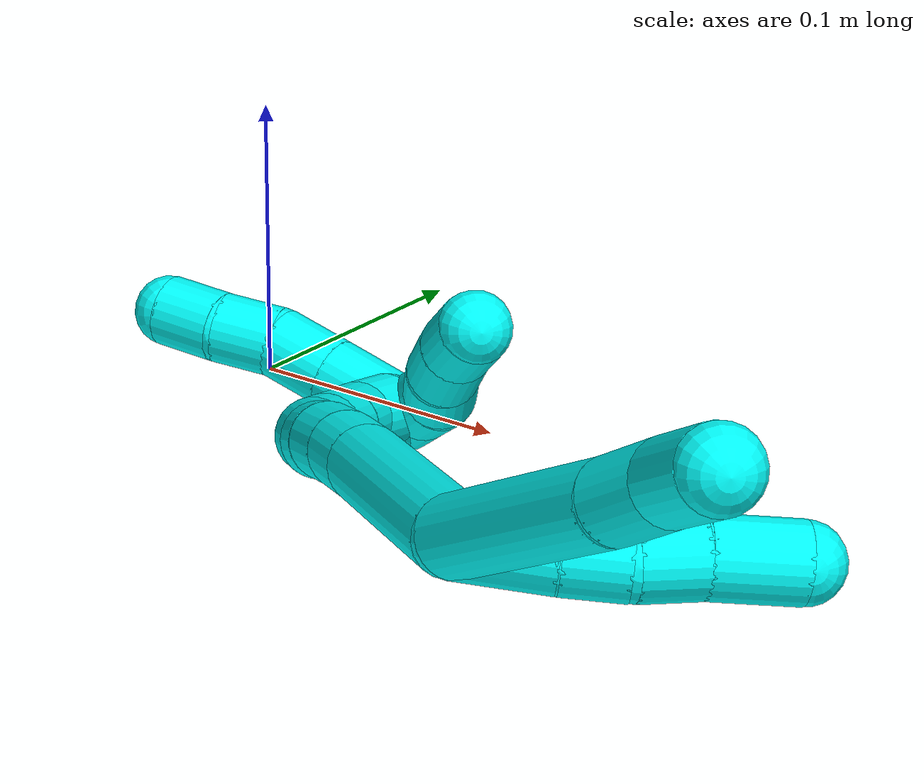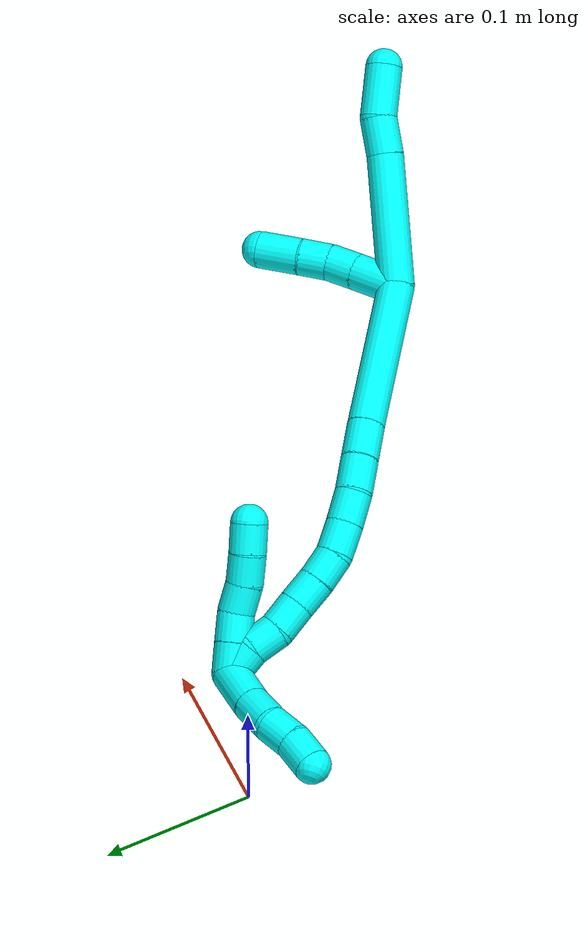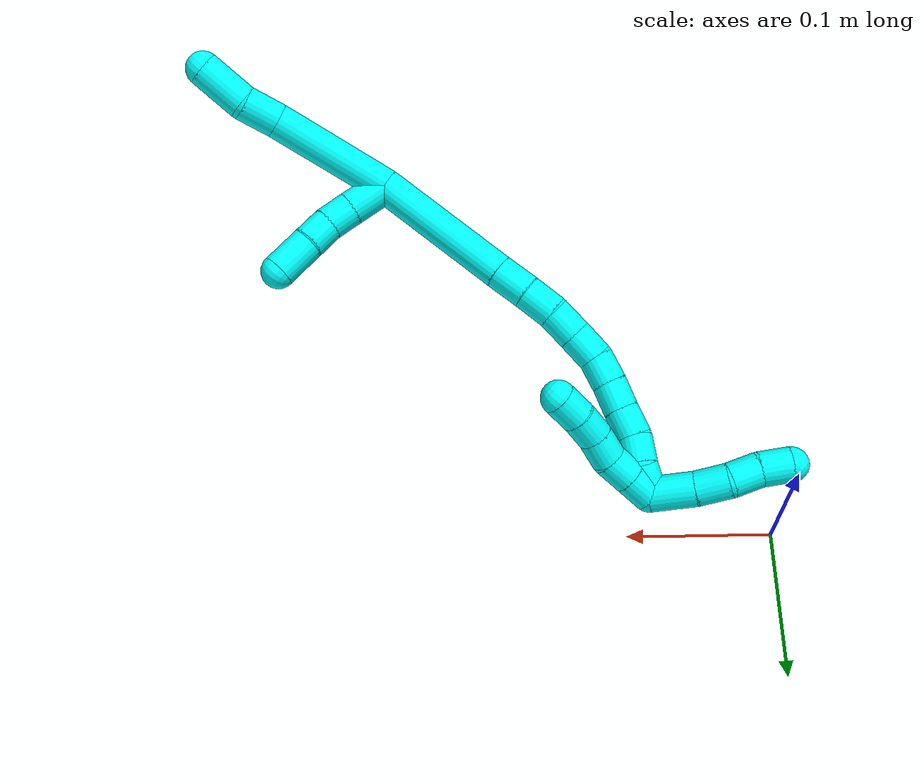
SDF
<sdf version="1.7">
 <world name="default">
  <model name="bin">
   <static>1</static>
   <link name="bottom">
    <collision name="collision-bottom">
     <pose>0 0 -0.01 0 -0 0</pose>
     <geometry><box><size>0.8 0.6 0.02</size></box></geometry>
     <surface>
      <friction><ode><mu>100</mu><mu2>100</mu2></ode></friction>
      <contact><collide_bitmask>65535</collide_bitmask></contact>
     </surface>
    </collision>
   </link>
   <link name="west_wall">
    <collision name="collision-west_wall">
     <pose>-0.41 0 0.1 0 -0 0</pose>
     <geometry><box><size>0.02 0.6 0.2</size></box></geometry>
     <surface>
      <friction><ode><mu>100</mu><mu2>100</mu2></ode></friction>
      <contact><collide_bitmask>65535</collide_bitmask></contact>
     </surface>
    </collision>
   </link>
   <link name="east_wall">
    <collision name="collision-east_wall">
     <pose>0.41 0 0.1 0 -0 0</pose>
     <geometry><box><size>0.02 0.6 0.2</size></box></geometry>
     <surface>
      <friction><ode><mu>100</mu><mu2>100</mu2></ode></friction>
      <contact><collide_bitmask>65535</collide_bitmask></contact>
     </surface>
    </collision>
   </link>
   <link name="south_wall">
    <collision name="collision-south_wall">
     <pose>0 -0.31 0.1 0 -0 0</pose>
     <geometry><box><size>0.8 0.02 0.2</size></box></geometry>
     <surface>
      <friction><ode><mu>100</mu><mu2>100</mu2></ode></friction>
      <contact><collide_bitmask>65535</collide_bitmask></contact>
     </surface>
    </collision>
   </link>
   <link name="north_wall">
    <collision name="collision-north_wall">
     <pose>0 0.31 0.1 0 -0 0</pose>
     <geometry><box><size>0.8 0.02 0.2</size></box></geometry>
     <surface>
      <friction><ode><mu>100</mu><mu2>100</mu2></ode></friction>
      <contact><collide_bitmask>65535</collide_bitmask></contact>
     </surface>
    </collision>
   </link>
  </model>
  <model name="3">
   <static>0</static>
   <link name="3">
    <collision name="collision-cylinder-e_1_2_8">
     <pose>0.010771 0.015082 0.040407 -0.357241 0.244735 -0.0444</pose>
     <geometry><cylinder><radius>0.0125</radius><length>0.088909</length></cylinder></geometry>
     <surface>
      <friction><ode><mu>1.16</mu><mu2>1.16</mu2><slip1>0</slip1><slip2>0</slip2></ode></friction>
      <contact><ode><kp>1e+06</kp><kd>1</kd><max_vel>0</max_vel><min_depth>0.001</min_depth></ode></contact>
     </surface>
    </collision>
    <visual name="visual-cylinder-e_1_2_8">
     <pose>0.010771 0.015082 0.040407 -0.357241 0.244735 -0.0444</pose>
     <geometry><cylinder><radius>0.0125</radius><length>0.088909</length></cylinder></geometry>
     <material><ambient>0.003922 1 0.996078 1</ambient></material>
    </visual>
    <collision name="collision-cylinder-e_2_8_9">
     <pose>0.025488 0.035685 0.091951 -0.460218 0.307351 -0.07254</pose>
     <geometry><cylinder><radius>0.0125</radius><length>0.026083</length></cylinder></geometry>
     <surface>
      <friction><ode><mu>1.16</mu><mu2>1.16</mu2><slip1>0</slip1><slip2>0</slip2></ode></friction>
      <contact><ode><kp>1e+06</kp><kd>1</kd><max_vel>0</max_vel><min_depth>0.001</min_depth></ode></contact>
     </surface>
    </collision>
    <visual name="visual-cylinder-e_2_8_9">
     <pose>0.025488 0.035685 0.091951 -0.460218 0.307351 -0.07254</pose>
     <geometry><cylinder><radius>0.0125</radius><length>0.026083</length></cylinder></geometry>
     <material><ambient>0.003922 1 0.996078 1</ambient></material>
    </visual>
    <collision name="collision-cylinder-e_3_9_6">
     <pose>0.030622 0.046255 0.119806 -0.293325 0.067929 -0.010038</pose>
     <geometry><cylinder><radius>0.0125</radius><length>0.035007</length></cylinder></geometry>
     <surface>
      <friction><ode><mu>1.16</mu><mu2>1.16</mu2><slip1>0</slip1><slip2>0</slip2></ode></friction>
      <contact><ode><kp>1e+06</kp><kd>1</kd><max_vel>0</max_vel><min_depth>0.001</min_depth></ode></contact>
     </surface>
    </collision>
    <visual name="visual-cylinder-e_3_9_6">
     <pose>0.030622 0.046255 0.119806 -0.293325 0.067929 -0.010038</pose>
     <geometry><cylinder><radius>0.0125</radius><length>0.035007</length></cylinder></geometry>
     <material><ambient>0.003922 1 0.996078 1</ambient></material>
    </visual>
    <collision name="collision-cylinder-e_1_2_10">
     <pose>0.014762 0.001178 0.003095 -0.363776 1.35008 -0.292354</pose>
     <geometry><cylinder><radius>0.0125</radius><length>0.030257</length></cylinder></geometry>
     <surface>
      <friction><ode><mu>1.16</mu><mu2>1.16</mu2><slip1>0</slip1><slip2>0</slip2></ode></friction>
      <contact><ode><kp>1e+06</kp><kd>1</kd><max_vel>0</max_vel><min_depth>0.001</min_depth></ode></contact>
     </surface>
    </collision>
    <visual name="visual-cylinder-e_1_2_10">
     <pose>0.014762 0.001178 0.003095 -0.363776 1.35008 -0.292354</pose>
     <geometry><cylinder><radius>0.0125</radius><length>0.030257</length></cylinder></geometry>
     <material><ambient>0.003922 1 0.996078 1</ambient></material>
    </visual>
    <collision name="collision-cylinder-e_2_10_11">
     <pose>0.039361 0.003576 0.007922 -0.613458 1.35881 -0.500883</pose>
     <geometry><cylinder><radius>0.0125</radius><length>0.020125</length></cylinder></geometry>
     <surface>
      <friction><ode><mu>1.16</mu><mu2>1.16</mu2><slip1>0</slip1><slip2>0</slip2></ode></friction>
      <contact><ode><kp>1e+06</kp><kd>1</kd><max_vel>0</max_vel><min_depth>0.001</min_depth></ode></contact>
     </surface>
    </collision>
    <visual name="visual-cylinder-e_2_10_11">
     <pose>0.039361 0.003576 0.007922 -0.613458 1.35881 -0.500883</pose>
     <geometry><cylinder><radius>0.0125</radius><length>0.020125</length></cylinder></geometry>
     <material><ambient>0.003922 1 0.996078 1</ambient></material>
    </visual>
    <collision name="collision-cylinder-e_3_11_12">
     <pose>0.059214 0.007132 0.009402 -1.67767 1.34027 -1.4456</pose>
     <geometry><cylinder><radius>0.0125</radius><length>0.020576</length></cylinder></geometry>
     <surface>
      <friction><ode><mu>1.16</mu><mu2>1.16</mu2><slip1>0</slip1><slip2>0</slip2></ode></friction>
      <contact><ode><kp>1e+06</kp><kd>1</kd><max_vel>0</max_vel><min_depth>0.001</min_depth></ode></contact>
     </surface>
    </collision>
    <visual name="visual-cylinder-e_3_11_12">
     <pose>0.059214 0.007132 0.009402 -1.67767 1.34027 -1.4456</pose>
     <geometry><cylinder><radius>0.0125</radius><length>0.020576</length></cylinder></geometry>
     <material><ambient>0.003922 1 0.996078 1</ambient></material>
    </visual>
    <collision name="collision-cylinder-e_4_12_5">
     <pose>0.083621 0.011403 0.009203 -1.5442 1.43717 -1.41086</pose>
     <geometry><cylinder><radius>0.0125</radius><length>0.029041</length></cylinder></geometry>
     <surface>
      <friction><ode><mu>1.16</mu><mu2>1.16</mu2><slip1>0</slip1><slip2>0</slip2></ode></friction>
      <contact><ode><kp>1e+06</kp><kd>1</kd><max_vel>0</max_vel><min_depth>0.001</min_depth></ode></contact>
     </surface>
    </collision>
    <visual name="visual-cylinder-e_4_12_5">
     <pose>0.083621 0.011403 0.009203 -1.5442 1.43717 -1.41086</pose>
     <geometry><cylinder><radius>0.0125</radius><length>0.029041</length></cylinder></geometry>
     <material><ambient>0.003922 1 0.996078 1</ambient></material>
    </visual>
    <collision name="collision-cylinder-e_1_2_13">
     <pose>-0.004062 -5e-06 -0.051576 3.14149 -0.078595 -3.13897</pose>
     <geometry><cylinder><radius>0.0125</radius><length>0.103471</length></cylinder></geometry>
     <surface>
      <friction><ode><mu>1.16</mu><mu2>1.16</mu2><slip1>0</slip1><slip2>0</slip2></ode></friction>
      <contact><ode><kp>1e+06</kp><kd>1</kd><max_vel>0</max_vel><min_depth>0.001</min_depth></ode></contact>
     </surface>
    </collision>
    <visual name="visual-cylinder-e_1_2_13">
     <pose>-0.004062 -5e-06 -0.051576 3.14149 -0.078595 -3.13897</pose>
     <geometry><cylinder><radius>0.0125</radius><length>0.103471</length></cylinder></geometry>
     <material><ambient>0.003922 1 0.996078 1</ambient></material>
    </visual>
    <collision name="collision-cylinder-e_2_13_14">
     <pose>-0.009348 -0.000226 -0.115436 3.1241 -0.099293 -2.79314</pose>
     <geometry><cylinder><radius>0.0125</radius><length>0.024695</length></cylinder></geometry>
     <surface>
      <friction><ode><mu>1.16</mu><mu2>1.16</mu2><slip1>0</slip1><slip2>0</slip2></ode></friction>
      <contact><ode><kp>1e+06</kp><kd>1</kd><max_vel>0</max_vel><min_depth>0.001</min_depth></ode></contact>
     </surface>
    </collision>
    <visual name="visual-cylinder-e_2_13_14">
     <pose>-0.009348 -0.000226 -0.115436 3.1241 -0.099293 -2.79314</pose>
     <geometry><cylinder><radius>0.0125</radius><length>0.024695</length></cylinder></geometry>
     <material><ambient>0.003922 1 0.996078 1</ambient></material>
    </visual>
    <collision name="collision-cylinder-e_3_14_15">
     <pose>-0.011557 -0.0013 -0.139482 3.06866 -0.083345 -1.70403</pose>
     <geometry><cylinder><radius>0.0125</radius><length>0.023667</length></cylinder></geometry>
     <surface>
      <friction><ode><mu>1.16</mu><mu2>1.16</mu2><slip1>0</slip1><slip2>0</slip2></ode></friction>
      <contact><ode><kp>1e+06</kp><kd>1</kd><max_vel>0</max_vel><min_depth>0.001</min_depth></ode></contact>
     </surface>
    </collision>
    <visual name="visual-cylinder-e_3_14_15">
     <pose>-0.011557 -0.0013 -0.139482 3.06866 -0.083345 -1.70403</pose>
     <geometry><cylinder><radius>0.0125</radius><length>0.023667</length></cylinder></geometry>
     <material><ambient>0.003922 1 0.996078 1</ambient></material>
    </visual>
    <collision name="collision-cylinder-e_4_15_16">
     <pose>-0.011908 -0.003823 -0.16209 2.98935 0.05776 0.724125</pose>
     <geometry><cylinder><radius>0.0125</radius><length>0.021983</length></cylinder></geometry>
     <surface>
      <friction><ode><mu>1.16</mu><mu2>1.16</mu2><slip1>0</slip1><slip2>0</slip2></ode></friction>
      <contact><ode><kp>1e+06</kp><kd>1</kd><max_vel>0</max_vel><min_depth>0.001</min_depth></ode></contact>
     </surface>
    </collision>
    <visual name="visual-cylinder-e_4_15_16">
     <pose>-0.011908 -0.003823 -0.16209 2.98935 0.05776 0.724125</pose>
     <geometry><cylinder><radius>0.0125</radius><length>0.021983</length></cylinder></geometry>
     <material><ambient>0.003922 1 0.996078 1</ambient></material>
    </visual>
    <collision name="collision-cylinder-e_5_16_17">
     <pose>-0.010348 -0.006586 -0.183855 3.04127 0.084097 1.39501</pose>
     <geometry><cylinder><radius>0.0125</radius><length>0.022026</length></cylinder></geometry>
     <surface>
      <friction><ode><mu>1.16</mu><mu2>1.16</mu2><slip1>0</slip1><slip2>0</slip2></ode></friction>
      <contact><ode><kp>1e+06</kp><kd>1</kd><max_vel>0</max_vel><min_depth>0.001</min_depth></ode></contact>
     </surface>
    </collision>
    <visual name="visual-cylinder-e_5_16_17">
     <pose>-0.010348 -0.006586 -0.183855 3.04127 0.084097 1.39501</pose>
     <geometry><cylinder><radius>0.0125</radius><length>0.022026</length></cylinder></geometry>
     <material><ambient>0.003922 1 0.996078 1</ambient></material>
    </visual>
    <collision name="collision-cylinder-e_6_17_18">
     <pose>-0.005862 -0.007975 -0.204479 3.11178 0.351529 2.97408</pose>
     <geometry><cylinder><radius>0.0125</radius><length>0.020684</length></cylinder></geometry>
     <surface>
      <friction><ode><mu>1.16</mu><mu2>1.16</mu2><slip1>0</slip1><slip2>0</slip2></ode></friction>
      <contact><ode><kp>1e+06</kp><kd>1</kd><max_vel>0</max_vel><min_depth>0.001</min_depth></ode></contact>
     </surface>
    </collision>
    <visual name="visual-cylinder-e_6_17_18">
     <pose>-0.005862 -0.007975 -0.204479 3.11178 0.351529 2.97408</pose>
     <geometry><cylinder><radius>0.0125</radius><length>0.020684</length></cylinder></geometry>
     <material><ambient>0.003922 1 0.996078 1</ambient></material>
    </visual>
    <collision name="collision-cylinder-e_7_18_19">
     <pose>0.002028 -0.008124 -0.22356 -3.12662 0.43252 -3.07346</pose>
     <geometry><cylinder><radius>0.0125</radius><length>0.020656</length></cylinder></geometry>
     <surface>
      <friction><ode><mu>1.16</mu><mu2>1.16</mu2><slip1>0</slip1><slip2>0</slip2></ode></friction>
      <contact><ode><kp>1e+06</kp><kd>1</kd><max_vel>0</max_vel><min_depth>0.001</min_depth></ode></contact>
     </surface>
    </collision>
    <visual name="visual-cylinder-e_7_18_19">
     <pose>0.002028 -0.008124 -0.22356 -3.12662 0.43252 -3.07346</pose>
     <geometry><cylinder><radius>0.0125</radius><length>0.020656</length></cylinder></geometry>
     <material><ambient>0.003922 1 0.996078 1</ambient></material>
    </visual>
    <collision name="collision-cylinder-e_8_19_20">
     <pose>0.01042 -0.007651 -0.242744 -3.10767 0.3925 -2.97134</pose>
     <geometry><cylinder><radius>0.0125</radius><length>0.021242</length></cylinder></geometry>
     <surface>
      <friction><ode><mu>1.16</mu><mu2>1.16</mu2><slip1>0</slip1><slip2>0</slip2></ode></friction>
      <contact><ode><kp>1e+06</kp><kd>1</kd><max_vel>0</max_vel><min_depth>0.001</min_depth></ode></contact>
     </surface>
    </collision>
    <visual name="visual-cylinder-e_8_19_20">
     <pose>0.01042 -0.007651 -0.242744 -3.10767 0.3925 -2.97134</pose>
     <geometry><cylinder><radius>0.0125</radius><length>0.021242</length></cylinder></geometry>
     <material><ambient>0.003922 1 0.996078 1</ambient></material>
    </visual>
    <collision name="collision-cylinder-e_9_20_21">
     <pose>0.020624 -0.005965 -0.260493 -2.97285 0.65139 -2.65084</pose>
     <geometry><cylinder><radius>0.0125</radius><length>0.02026</length></cylinder></geometry>
     <surface>
      <friction><ode><mu>1.16</mu><mu2>1.16</mu2><slip1>0</slip1><slip2>0</slip2></ode></friction>
      <contact><ode><kp>1e+06</kp><kd>1</kd><max_vel>0</max_vel><min_depth>0.001</min_depth></ode></contact>
     </surface>
    </collision>
    <visual name="visual-cylinder-e_9_20_21">
     <pose>0.020624 -0.005965 -0.260493 -2.97285 0.65139 -2.65084</pose>
     <geometry><cylinder><radius>0.0125</radius><length>0.02026</length></cylinder></geometry>
     <material><ambient>0.003922 1 0.996078 1</ambient></material>
    </visual>
    <collision name="collision-cylinder-e_10_21_1">
     <pose>0.032007 -0.006122 -0.277591 2.97815 0.514121 2.53752</pose>
     <geometry><cylinder><radius>0.0125</radius><length>0.021316</length></cylinder></geometry>
     <surface>
      <friction><ode><mu>1.16</mu><mu2>1.16</mu2><slip1>0</slip1><slip2>0</slip2></ode></friction>
      <contact><ode><kp>1e+06</kp><kd>1</kd><max_vel>0</max_vel><min_depth>0.001</min_depth></ode></contact>
     </surface>
    </collision>
    <visual name="visual-cylinder-e_10_21_1">
     <pose>0.032007 -0.006122 -0.277591 2.97815 0.514121 2.53752</pose>
     <geometry><cylinder><radius>0.0125</radius><length>0.021316</length></cylinder></geometry>
     <material><ambient>0.003922 1 0.996078 1</ambient></material>
    </visual>
    <collision name="collision-cylinder-e_1_1_22">
     <pose>0.037822 -0.004002 -0.277447 -0.372082 0.057353 -0.010798</pose>
     <geometry><cylinder><radius>0.0125</radius><length>0.02</length></cylinder></geometry>
     <surface>
      <friction><ode><mu>1.16</mu><mu2>1.16</mu2><slip1>0</slip1><slip2>0</slip2></ode></friction>
      <contact><ode><kp>1e+06</kp><kd>1</kd><max_vel>0</max_vel><min_depth>0.001</min_depth></ode></contact>
     </surface>
    </collision>
    <visual name="visual-cylinder-e_1_1_22">
     <pose>0.037822 -0.004002 -0.277447 -0.372082 0.057353 -0.010798</pose>
     <geometry><cylinder><radius>0.0125</radius><length>0.02</length></cylinder></geometry>
     <material><ambient>0.003922 1 0.996078 1</ambient></material>
    </visual>
    <collision name="collision-cylinder-e_2_22_23">
     <pose>0.038961 0.003111 -0.25879 -0.356415 0.056615 -0.0102</pose>
     <geometry><cylinder><radius>0.0125</radius><length>0.02</length></cylinder></geometry>
     <surface>
      <friction><ode><mu>1.16</mu><mu2>1.16</mu2><slip1>0</slip1><slip2>0</slip2></ode></friction>
      <contact><ode><kp>1e+06</kp><kd>1</kd><max_vel>0</max_vel><min_depth>0.001</min_depth></ode></contact>
     </surface>
    </collision>
    <visual name="visual-cylinder-e_2_22_23">
     <pose>0.038961 0.003111 -0.25879 -0.356415 0.056615 -0.0102</pose>
     <geometry><cylinder><radius>0.0125</radius><length>0.02</length></cylinder></geometry>
     <material><ambient>0.003922 1 0.996078 1</ambient></material>
    </visual>
    <collision name="collision-cylinder-e_3_23_24">
     <pose>0.037477 0.011258 -0.240828 -0.496684 -0.206429 0.05252</pose>
     <geometry><cylinder><radius>0.0125</radius><length>0.02</length></cylinder></geometry>
     <surface>
      <friction><ode><mu>1.16</mu><mu2>1.16</mu2><slip1>0</slip1><slip2>0</slip2></ode></friction>
      <contact><ode><kp>1e+06</kp><kd>1</kd><max_vel>0</max_vel><min_depth>0.001</min_depth></ode></contact>
     </surface>
    </collision>
    <visual name="visual-cylinder-e_3_23_24">
     <pose>0.037477 0.011258 -0.240828 -0.496684 -0.206429 0.05252</pose>
     <geometry><cylinder><radius>0.0125</radius><length>0.02</length></cylinder></geometry>
     <material><ambient>0.003922 1 0.996078 1</ambient></material>
    </visual>
    <collision name="collision-cylinder-e_4_24_25">
     <pose>0.034959 0.021456 -0.223907 -0.587092 -0.046842 0.014162</pose>
     <geometry><cylinder><radius>0.0125</radius><length>0.02</length></cylinder></geometry>
     <surface>
      <friction><ode><mu>1.16</mu><mu2>1.16</mu2><slip1>0</slip1><slip2>0</slip2></ode></friction>
      <contact><ode><kp>1e+06</kp><kd>1</kd><max_vel>0</max_vel><min_depth>0.001</min_depth></ode></contact>
     </surface>
    </collision>
    <visual name="visual-cylinder-e_4_24_25">
     <pose>0.034959 0.021456 -0.223907 -0.587092 -0.046842 0.014162</pose>
     <geometry><cylinder><radius>0.0125</radius><length>0.02</length></cylinder></geometry>
     <material><ambient>0.003922 1 0.996078 1</ambient></material>
    </visual>
    <collision name="collision-cylinder-e_5_25_4">
     <pose>0.034864 0.031828 -0.206847 -0.505556 0.037306 -0.009637</pose>
     <geometry><cylinder><radius>0.0125</radius><length>0.02</length></cylinder></geometry>
     <surface>
      <friction><ode><mu>1.16</mu><mu2>1.16</mu2><slip1>0</slip1><slip2>0</slip2></ode></friction>
      <contact><ode><kp>1e+06</kp><kd>1</kd><max_vel>0</max_vel><min_depth>0.001</min_depth></ode></contact>
     </surface>
    </collision>
    <visual name="visual-cylinder-e_5_25_4">
     <pose>0.034864 0.031828 -0.206847 -0.505556 0.037306 -0.009637</pose>
     <geometry><cylinder><radius>0.0125</radius><length>0.02</length></cylinder></geometry>
     <material><ambient>0.003922 1 0.996078 1</ambient></material>
    </visual>
    <collision name="collision-cylinder-e_1_1_26">
     <pose>0.025309 -0.004382 -0.297243 -2.84128 -0.826865 2.47743</pose>
     <geometry><cylinder><radius>0.0125</radius><length>0.032452</length></cylinder></geometry>
     <surface>
      <friction><ode><mu>1.16</mu><mu2>1.16</mu2><slip1>0</slip1><slip2>0</slip2></ode></friction>
      <contact><ode><kp>1e+06</kp><kd>1</kd><max_vel>0</max_vel><min_depth>0.001</min_depth></ode></contact>
     </surface>
    </collision>
    <visual name="visual-cylinder-e_1_1_26">
     <pose>0.025309 -0.004382 -0.297243 -2.84128 -0.826865 2.47743</pose>
     <geometry><cylinder><radius>0.0125</radius><length>0.032452</length></cylinder></geometry>
     <material><ambient>0.003922 1 0.996078 1</ambient></material>
    </visual>
    <collision name="collision-cylinder-e_2_26_27">
     <pose>0.003742 0.001539 -0.314379 -2.75926 -0.931594 2.4066</pose>
     <geometry><cylinder><radius>0.0125</radius><length>0.023992</length></cylinder></geometry>
     <surface>
      <friction><ode><mu>1.16</mu><mu2>1.16</mu2><slip1>0</slip1><slip2>0</slip2></ode></friction>
      <contact><ode><kp>1e+06</kp><kd>1</kd><max_vel>0</max_vel><min_depth>0.001</min_depth></ode></contact>
     </surface>
    </collision>
    <visual name="visual-cylinder-e_2_26_27">
     <pose>0.003742 0.001539 -0.314379 -2.75926 -0.931594 2.4066</pose>
     <geometry><cylinder><radius>0.0125</radius><length>0.023992</length></cylinder></geometry>
     <material><ambient>0.003922 1 0.996078 1</ambient></material>
    </visual>
    <collision name="collision-cylinder-e_3_27_28">
     <pose>-0.015425 0.004163 -0.325905 3.13226 -1.09738 -3.12633</pose>
     <geometry><cylinder><radius>0.0125</radius><length>0.021439</length></cylinder></geometry>
     <surface>
      <friction><ode><mu>1.16</mu><mu2>1.16</mu2><slip1>0</slip1><slip2>0</slip2></ode></friction>
      <contact><ode><kp>1e+06</kp><kd>1</kd><max_vel>0</max_vel><min_depth>0.001</min_depth></ode></contact>
     </surface>
    </collision>
    <visual name="visual-cylinder-e_3_27_28">
     <pose>-0.015425 0.004163 -0.325905 3.13226 -1.09738 -3.12633</pose>
     <geometry><cylinder><radius>0.0125</radius><length>0.021439</length></cylinder></geometry>
     <material><ambient>0.003922 1 0.996078 1</ambient></material>
    </visual>
    <collision name="collision-cylinder-e_4_28_3">
     <pose>-0.033634 0.004413 -0.337653 -3.09848 -0.900831 3.05249</pose>
     <geometry><cylinder><radius>0.0125</radius><length>0.022118</length></cylinder></geometry>
     <surface>
      <friction><ode><mu>1.16</mu><mu2>1.16</mu2><slip1>0</slip1><slip2>0</slip2></ode></friction>
      <contact><ode><kp>1e+06</kp><kd>1</kd><max_vel>0</max_vel><min_depth>0.001</min_depth></ode></contact>
     </surface>
    </collision>
    <visual name="visual-cylinder-e_4_28_3">
     <pose>-0.033634 0.004413 -0.337653 -3.09848 -0.900831 3.05249</pose>
     <geometry><cylinder><radius>0.0125</radius><length>0.022118</length></cylinder></geometry>
     <material><ambient>0.003922 1 0.996078 1</ambient></material>
    </visual>
    <collision name="collision-sphere-3">
     <pose>-0.042303 0.004709 -0.344514 0 -0 0</pose>
     <geometry><sphere><radius>0.0125</radius></sphere></geometry>
     <surface>
      <friction><ode><mu>1.16</mu><mu2>1.16</mu2><slip1>0</slip1><slip2>0</slip2></ode></friction>
      <contact><ode><kp>1e+06</kp><kd>1</kd><max_vel>0</max_vel><min_depth>0.001</min_depth></ode></contact>
     </surface>
    </collision>
    <visual name="visual-sphere-3">
     <pose>-0.042303 0.004709 -0.344514 0 -0 0</pose>
     <geometry><sphere><radius>0.0125</radius></sphere></geometry>
     <material><ambient>0.003922 1 0.996078 1</ambient></material>
    </visual>
    <collision name="collision-sphere-28">
     <pose>-0.024966 0.004117 -0.330792 0 -0 0</pose>
     <geometry><sphere><radius>0.0125</radius></sphere></geometry>
     <surface>
      <friction><ode><mu>1.16</mu><mu2>1.16</mu2><slip1>0</slip1><slip2>0</slip2></ode></friction>
      <contact><ode><kp>1e+06</kp><kd>1</kd><max_vel>0</max_vel><min_depth>0.001</min_depth></ode></contact>
     </surface>
    </collision>
    <visual name="visual-sphere-28">
     <pose>-0.024966 0.004117 -0.330792 0 -0 0</pose>
     <geometry><sphere><radius>0.0125</radius></sphere></geometry>
     <material><ambient>0.003922 1 0.996078 1</ambient></material>
    </visual>
    <collision name="collision-sphere-27">
     <pose>-0.005885 0.004209 -0.321018 0 -0 0</pose>
     <geometry><sphere><radius>0.0125</radius></sphere></geometry>
     <surface>
      <friction><ode><mu>1.16</mu><mu2>1.16</mu2><slip1>0</slip1><slip2>0</slip2></ode></friction>
      <contact><ode><kp>1e+06</kp><kd>1</kd><max_vel>0</max_vel><min_depth>0.001</min_depth></ode></contact>
     </surface>
    </collision>
    <visual name="visual-sphere-27">
     <pose>-0.005885 0.004209 -0.321018 0 -0 0</pose>
     <geometry><sphere><radius>0.0125</radius></sphere></geometry>
     <material><ambient>0.003922 1 0.996078 1</ambient></material>
    </visual>
    <collision name="collision-sphere-26">
     <pose>0.01337 -0.001131 -0.30774 0 -0 0</pose>
     <geometry><sphere><radius>0.0125</radius></sphere></geometry>
     <surface>
      <friction><ode><mu>1.16</mu><mu2>1.16</mu2><slip1>0</slip1><slip2>0</slip2></ode></friction>
      <contact><ode><kp>1e+06</kp><kd>1</kd><max_vel>0</max_vel><min_depth>0.001</min_depth></ode></contact>
     </surface>
    </collision>
    <visual name="visual-sphere-26">
     <pose>0.01337 -0.001131 -0.30774 0 -0 0</pose>
     <geometry><sphere><radius>0.0125</radius></sphere></geometry>
     <material><ambient>0.003922 1 0.996078 1</ambient></material>
    </visual>
    <collision name="collision-sphere-4">
     <pose>0.035237 0.036668 -0.198104 0 -0 0</pose>
     <geometry><sphere><radius>0.0125</radius></sphere></geometry>
     <surface>
      <friction><ode><mu>1.16</mu><mu2>1.16</mu2><slip1>0</slip1><slip2>0</slip2></ode></friction>
      <contact><ode><kp>1e+06</kp><kd>1</kd><max_vel>0</max_vel><min_depth>0.001</min_depth></ode></contact>
     </surface>
    </collision>
    <visual name="visual-sphere-4">
     <pose>0.035237 0.036668 -0.198104 0 -0 0</pose>
     <geometry><sphere><radius>0.0125</radius></sphere></geometry>
     <material><ambient>0.003922 1 0.996078 1</ambient></material>
    </visual>
    <collision name="collision-sphere-25">
     <pose>0.034491 0.026989 -0.21559 0 -0 0</pose>
     <geometry><sphere><radius>0.0125</radius></sphere></geometry>
     <surface>
      <friction><ode><mu>1.16</mu><mu2>1.16</mu2><slip1>0</slip1><slip2>0</slip2></ode></friction>
      <contact><ode><kp>1e+06</kp><kd>1</kd><max_vel>0</max_vel><min_depth>0.001</min_depth></ode></contact>
     </surface>
    </collision>
    <visual name="visual-sphere-25">
     <pose>0.034491 0.026989 -0.21559 0 -0 0</pose>
     <geometry><sphere><radius>0.0125</radius></sphere></geometry>
     <material><ambient>0.003922 1 0.996078 1</ambient></material>
    </visual>
    <collision name="collision-sphere-24">
     <pose>0.035427 0.015922 -0.232223 0 -0 0</pose>
     <geometry><sphere><radius>0.0125</radius></sphere></geometry>
     <surface>
      <friction><ode><mu>1.16</mu><mu2>1.16</mu2><slip1>0</slip1><slip2>0</slip2></ode></friction>
      <contact><ode><kp>1e+06</kp><kd>1</kd><max_vel>0</max_vel><min_depth>0.001</min_depth></ode></contact>
     </surface>
    </collision>
    <visual name="visual-sphere-24">
     <pose>0.035427 0.015922 -0.232223 0 -0 0</pose>
     <geometry><sphere><radius>0.0125</radius></sphere></geometry>
     <material><ambient>0.003922 1 0.996078 1</ambient></material>
    </visual>
    <collision name="collision-sphere-23">
     <pose>0.039527 0.006594 -0.249433 0 -0 0</pose>
     <geometry><sphere><radius>0.0125</radius></sphere></geometry>
     <surface>
      <friction><ode><mu>1.16</mu><mu2>1.16</mu2><slip1>0</slip1><slip2>0</slip2></ode></friction>
      <contact><ode><kp>1e+06</kp><kd>1</kd><max_vel>0</max_vel><min_depth>0.001</min_depth></ode></contact>
     </surface>
    </collision>
    <visual name="visual-sphere-23">
     <pose>0.039527 0.006594 -0.249433 0 -0 0</pose>
     <geometry><sphere><radius>0.0125</radius></sphere></geometry>
     <material><ambient>0.003922 1 0.996078 1</ambient></material>
    </visual>
    <collision name="collision-sphere-22">
     <pose>0.038395 -0.000373 -0.268146 0 -0 0</pose>
     <geometry><sphere><radius>0.0125</radius></sphere></geometry>
     <surface>
      <friction><ode><mu>1.16</mu><mu2>1.16</mu2><slip1>0</slip1><slip2>0</slip2></ode></friction>
      <contact><ode><kp>1e+06</kp><kd>1</kd><max_vel>0</max_vel><min_depth>0.001</min_depth></ode></contact>
     </surface>
    </collision>
    <visual name="visual-sphere-22">
     <pose>0.038395 -0.000373 -0.268146 0 -0 0</pose>
     <geometry><sphere><radius>0.0125</radius></sphere></geometry>
     <material><ambient>0.003922 1 0.996078 1</ambient></material>
    </visual>
    <collision name="collision-sphere-1">
     <pose>0.037248 -0.007632 -0.286747 0 -0 0</pose>
     <geometry><sphere><radius>0.0125</radius></sphere></geometry>
     <surface>
      <friction><ode><mu>1.16</mu><mu2>1.16</mu2><slip1>0</slip1><slip2>0</slip2></ode></friction>
      <contact><ode><kp>1e+06</kp><kd>1</kd><max_vel>0</max_vel><min_depth>0.001</min_depth></ode></contact>
     </surface>
    </collision>
    <visual name="visual-sphere-1">
     <pose>0.037248 -0.007632 -0.286747 0 -0 0</pose>
     <geometry><sphere><radius>0.0125</radius></sphere></geometry>
     <material><ambient>0.003922 1 0.996078 1</ambient></material>
    </visual>
    <collision name="collision-sphere-21">
     <pose>0.026766 -0.004612 -0.268434 0 -0 0</pose>
     <geometry><sphere><radius>0.0125</radius></sphere></geometry>
     <surface>
      <friction><ode><mu>1.16</mu><mu2>1.16</mu2><slip1>0</slip1><slip2>0</slip2></ode></friction>
      <contact><ode><kp>1e+06</kp><kd>1</kd><max_vel>0</max_vel><min_depth>0.001</min_depth></ode></contact>
     </surface>
    </collision>
    <visual name="visual-sphere-21">
     <pose>0.026766 -0.004612 -0.268434 0 -0 0</pose>
     <geometry><sphere><radius>0.0125</radius></sphere></geometry>
     <material><ambient>0.003922 1 0.996078 1</ambient></material>
    </visual>
    <collision name="collision-sphere-11">
     <pose>0.049198 0.004795 0.009653 0 -0 0</pose>
     <geometry><sphere><radius>0.0125</radius></sphere></geometry>
     <surface>
      <friction><ode><mu>1.16</mu><mu2>1.16</mu2><slip1>0</slip1><slip2>0</slip2></ode></friction>
      <contact><ode><kp>1e+06</kp><kd>1</kd><max_vel>0</max_vel><min_depth>0.001</min_depth></ode></contact>
     </surface>
    </collision>
    <visual name="visual-sphere-11">
     <pose>0.049198 0.004795 0.009653 0 -0 0</pose>
     <geometry><sphere><radius>0.0125</radius></sphere></geometry>
     <material><ambient>0.003922 1 0.996078 1</ambient></material>
    </visual>
    <collision name="collision-sphere-10">
     <pose>0.029523 0.002357 0.006191 0 -0 0</pose>
     <geometry><sphere><radius>0.0125</radius></sphere></geometry>
     <surface>
      <friction><ode><mu>1.16</mu><mu2>1.16</mu2><slip1>0</slip1><slip2>0</slip2></ode></friction>
      <contact><ode><kp>1e+06</kp><kd>1</kd><max_vel>0</max_vel><min_depth>0.001</min_depth></ode></contact>
     </surface>
    </collision>
    <visual name="visual-sphere-10">
     <pose>0.029523 0.002357 0.006191 0 -0 0</pose>
     <geometry><sphere><radius>0.0125</radius></sphere></geometry>
     <material><ambient>0.003922 1 0.996078 1</ambient></material>
    </visual>
    <collision name="collision-sphere-6">
     <pose>0.03181 0.051305 0.136523 0 -0 0</pose>
     <geometry><sphere><radius>0.0125</radius></sphere></geometry>
     <surface>
      <friction><ode><mu>1.16</mu><mu2>1.16</mu2><slip1>0</slip1><slip2>0</slip2></ode></friction>
      <contact><ode><kp>1e+06</kp><kd>1</kd><max_vel>0</max_vel><min_depth>0.001</min_depth></ode></contact>
     </surface>
    </collision>
    <visual name="visual-sphere-6">
     <pose>0.03181 0.051305 0.136523 0 -0 0</pose>
     <geometry><sphere><radius>0.0125</radius></sphere></geometry>
     <material><ambient>0.003922 1 0.996078 1</ambient></material>
    </visual>
    <collision name="collision-sphere-9">
     <pose>0.029434 0.041206 0.103088 0 -0 0</pose>
     <geometry><sphere><radius>0.0125</radius></sphere></geometry>
     <surface>
      <friction><ode><mu>1.16</mu><mu2>1.16</mu2><slip1>0</slip1><slip2>0</slip2></ode></friction>
      <contact><ode><kp>1e+06</kp><kd>1</kd><max_vel>0</max_vel><min_depth>0.001</min_depth></ode></contact>
     </surface>
    </collision>
    <visual name="visual-sphere-9">
     <pose>0.029434 0.041206 0.103088 0 -0 0</pose>
     <geometry><sphere><radius>0.0125</radius></sphere></geometry>
     <material><ambient>0.003922 1 0.996078 1</ambient></material>
    </visual>
    <collision name="collision-sphere-2">
     <geometry><sphere><radius>0.0125</radius></sphere></geometry>
     <surface>
      <friction><ode><mu>1.16</mu><mu2>1.16</mu2><slip1>0</slip1><slip2>0</slip2></ode></friction>
      <contact><ode><kp>1e+06</kp><kd>1</kd><max_vel>0</max_vel><min_depth>0.001</min_depth></ode></contact>
     </surface>
    </collision>
    <visual name="visual-sphere-2">
     <geometry><sphere><radius>0.0125</radius></sphere></geometry>
     <material><ambient>0.003922 1 0.996078 1</ambient></material>
    </visual>
    <collision name="collision-sphere-19">
     <pose>0.006357 -0.007984 -0.232936 0 -0 0</pose>
     <geometry><sphere><radius>0.0125</radius></sphere></geometry>
     <surface>
      <friction><ode><mu>1.16</mu><mu2>1.16</mu2><slip1>0</slip1><slip2>0</slip2></ode></friction>
      <contact><ode><kp>1e+06</kp><kd>1</kd><max_vel>0</max_vel><min_depth>0.001</min_depth></ode></contact>
     </surface>
    </collision>
    <visual name="visual-sphere-19">
     <pose>0.006357 -0.007984 -0.232936 0 -0 0</pose>
     <geometry><sphere><radius>0.0125</radius></sphere></geometry>
     <material><ambient>0.003922 1 0.996078 1</ambient></material>
    </visual>
    <collision name="collision-sphere-8">
     <pose>0.021543 0.030164 0.080814 0 -0 0</pose>
     <geometry><sphere><radius>0.0125</radius></sphere></geometry>
     <surface>
      <friction><ode><mu>1.16</mu><mu2>1.16</mu2><slip1>0</slip1><slip2>0</slip2></ode></friction>
      <contact><ode><kp>1e+06</kp><kd>1</kd><max_vel>0</max_vel><min_depth>0.001</min_depth></ode></contact>
     </surface>
    </collision>
    <visual name="visual-sphere-8">
     <pose>0.021543 0.030164 0.080814 0 -0 0</pose>
     <geometry><sphere><radius>0.0125</radius></sphere></geometry>
     <material><ambient>0.003922 1 0.996078 1</ambient></material>
    </visual>
    <collision name="collision-sphere-12">
     <pose>0.06923 0.009469 0.009151 0 -0 0</pose>
     <geometry><sphere><radius>0.0125</radius></sphere></geometry>
     <surface>
      <friction><ode><mu>1.16</mu><mu2>1.16</mu2><slip1>0</slip1><slip2>0</slip2></ode></friction>
      <contact><ode><kp>1e+06</kp><kd>1</kd><max_vel>0</max_vel><min_depth>0.001</min_depth></ode></contact>
     </surface>
    </collision>
    <visual name="visual-sphere-12">
     <pose>0.06923 0.009469 0.009151 0 -0 0</pose>
     <geometry><sphere><radius>0.0125</radius></sphere></geometry>
     <material><ambient>0.003922 1 0.996078 1</ambient></material>
    </visual>
    <collision name="collision-sphere-5">
     <pose>0.098012 0.013337 0.009254 0 -0 0</pose>
     <geometry><sphere><radius>0.0125</radius></sphere></geometry>
     <surface>
      <friction><ode><mu>1.16</mu><mu2>1.16</mu2><slip1>0</slip1><slip2>0</slip2></ode></friction>
      <contact><ode><kp>1e+06</kp><kd>1</kd><max_vel>0</max_vel><min_depth>0.001</min_depth></ode></contact>
     </surface>
    </collision>
    <visual name="visual-sphere-5">
     <pose>0.098012 0.013337 0.009254 0 -0 0</pose>
     <geometry><sphere><radius>0.0125</radius></sphere></geometry>
     <material><ambient>0.003922 1 0.996078 1</ambient></material>
    </visual>
    <collision name="collision-sphere-13">
     <pose>-0.008124 -1.1e-05 -0.103151 0 -0 0</pose>
     <geometry><sphere><radius>0.0125</radius></sphere></geometry>
     <surface>
      <friction><ode><mu>1.16</mu><mu2>1.16</mu2><slip1>0</slip1><slip2>0</slip2></ode></friction>
      <contact><ode><kp>1e+06</kp><kd>1</kd><max_vel>0</max_vel><min_depth>0.001</min_depth></ode></contact>
     </surface>
    </collision>
    <visual name="visual-sphere-13">
     <pose>-0.008124 -1.1e-05 -0.103151 0 -0 0</pose>
     <geometry><sphere><radius>0.0125</radius></sphere></geometry>
     <material><ambient>0.003922 1 0.996078 1</ambient></material>
    </visual>
    <collision name="collision-sphere-14">
     <pose>-0.010572 -0.00044 -0.127721 0 -0 0</pose>
     <geometry><sphere><radius>0.0125</radius></sphere></geometry>
     <surface>
      <friction><ode><mu>1.16</mu><mu2>1.16</mu2><slip1>0</slip1><slip2>0</slip2></ode></friction>
      <contact><ode><kp>1e+06</kp><kd>1</kd><max_vel>0</max_vel><min_depth>0.001</min_depth></ode></contact>
     </surface>
    </collision>
    <visual name="visual-sphere-14">
     <pose>-0.010572 -0.00044 -0.127721 0 -0 0</pose>
     <geometry><sphere><radius>0.0125</radius></sphere></geometry>
     <material><ambient>0.003922 1 0.996078 1</ambient></material>
    </visual>
    <collision name="collision-sphere-15">
     <pose>-0.012542 -0.002159 -0.151244 0 -0 0</pose>
     <geometry><sphere><radius>0.0125</radius></sphere></geometry>
     <surface>
      <friction><ode><mu>1.16</mu><mu2>1.16</mu2><slip1>0</slip1><slip2>0</slip2></ode></friction>
      <contact><ode><kp>1e+06</kp><kd>1</kd><max_vel>0</max_vel><min_depth>0.001</min_depth></ode></contact>
     </surface>
    </collision>
    <visual name="visual-sphere-15">
     <pose>-0.012542 -0.002159 -0.151244 0 -0 0</pose>
     <geometry><sphere><radius>0.0125</radius></sphere></geometry>
     <material><ambient>0.003922 1 0.996078 1</ambient></material>
    </visual>
    <collision name="collision-sphere-16">
     <pose>-0.011273 -0.005487 -0.172936 0 -0 0</pose>
     <geometry><sphere><radius>0.0125</radius></sphere></geometry>
     <surface>
      <friction><ode><mu>1.16</mu><mu2>1.16</mu2><slip1>0</slip1><slip2>0</slip2></ode></friction>
      <contact><ode><kp>1e+06</kp><kd>1</kd><max_vel>0</max_vel><min_depth>0.001</min_depth></ode></contact>
     </surface>
    </collision>
    <visual name="visual-sphere-16">
     <pose>-0.011273 -0.005487 -0.172936 0 -0 0</pose>
     <geometry><sphere><radius>0.0125</radius></sphere></geometry>
     <material><ambient>0.003922 1 0.996078 1</ambient></material>
    </visual>
    <collision name="collision-sphere-17">
     <pose>-0.009423 -0.007685 -0.194774 0 -0 0</pose>
     <geometry><sphere><radius>0.0125</radius></sphere></geometry>
     <surface>
      <friction><ode><mu>1.16</mu><mu2>1.16</mu2><slip1>0</slip1><slip2>0</slip2></ode></friction>
      <contact><ode><kp>1e+06</kp><kd>1</kd><max_vel>0</max_vel><min_depth>0.001</min_depth></ode></contact>
     </surface>
    </collision>
    <visual name="visual-sphere-17">
     <pose>-0.009423 -0.007685 -0.194774 0 -0 0</pose>
     <geometry><sphere><radius>0.0125</radius></sphere></geometry>
     <material><ambient>0.003922 1 0.996078 1</ambient></material>
    </visual>
    <collision name="collision-sphere-18">
     <pose>-0.002301 -0.008264 -0.214184 0 -0 0</pose>
     <geometry><sphere><radius>0.0125</radius></sphere></geometry>
     <surface>
      <friction><ode><mu>1.16</mu><mu2>1.16</mu2><slip1>0</slip1><slip2>0</slip2></ode></friction>
      <contact><ode><kp>1e+06</kp><kd>1</kd><max_vel>0</max_vel><min_depth>0.001</min_depth></ode></contact>
     </surface>
    </collision>
    <visual name="visual-sphere-18">
     <pose>-0.002301 -0.008264 -0.214184 0 -0 0</pose>
     <geometry><sphere><radius>0.0125</radius></sphere></geometry>
     <material><ambient>0.003922 1 0.996078 1</ambient></material>
    </visual>
    <collision name="collision-sphere-20">
     <pose>0.014482 -0.007318 -0.252551 0 -0 0</pose>
     <geometry><sphere><radius>0.0125</radius></sphere></geometry>
     <surface>
      <friction><ode><mu>1.16</mu><mu2>1.16</mu2><slip1>0</slip1><slip2>0</slip2></ode></friction>
      <contact><ode><kp>1e+06</kp><kd>1</kd><max_vel>0</max_vel><min_depth>0.001</min_depth></ode></contact>
     </surface>
    </collision>
    <visual name="visual-sphere-20">
     <pose>0.014482 -0.007318 -0.252551 0 -0 0</pose>
     <geometry><sphere><radius>0.0125</radius></sphere></geometry>
     <material><ambient>0.003922 1 0.996078 1</ambient></material>
    </visual>
    <inertial>
     <pose>0.014568 0.006425 -0.118934 0 -0 0</pose>
     <mass>0.75</mass>
     <inertia>
      <ixx>-2.7e-05</ixx>
      <ixy>0</ixy>
      <ixz>0</ixz>
      <iyy>0.000202</iyy>
      <iyz>0</iyz>
      <izz>-5.1e-05</izz>
     </inertia>
    </inertial>
   </link>
   <pose>0.266275 -0.236767 0.089658 1.34749 0.261374 0.779954</pose>
  </model>
 </world>
</sdf>
